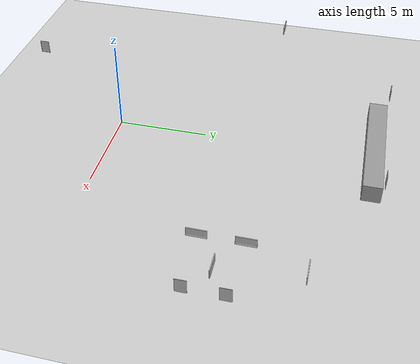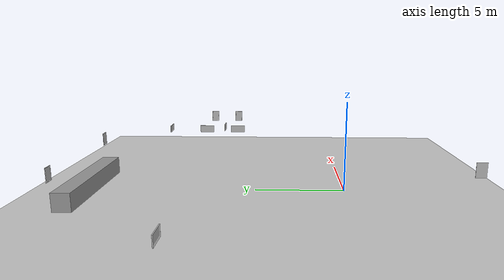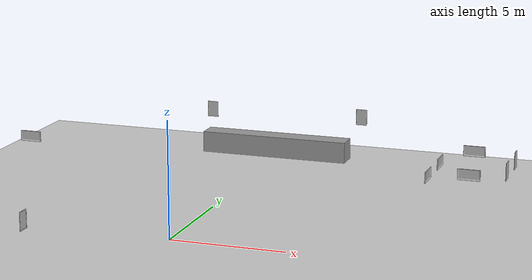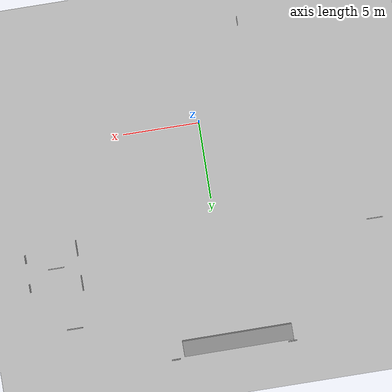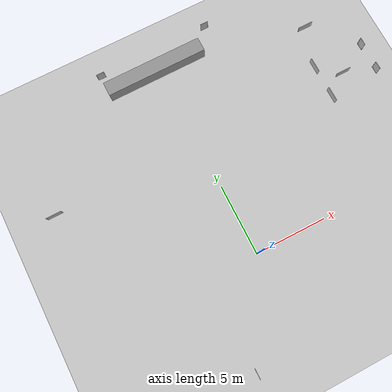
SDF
<sdf version="1.7">
 <world name="world">
  <model name="ground_plane">
   <static>1</static>
   <link name="link">
    <collision name="collision">
     <geometry><plane><normal>0 0 1</normal><size>100 100</size></plane></geometry>
     <surface>
      <contact><collide_bitmask>65535</collide_bitmask></contact>
      <friction><ode><mu>100</mu><mu2>50</mu2></ode></friction>
     </surface>
    </collision>
    <visual name="visual">
     <cast_shadows>0</cast_shadows>
     <geometry><plane><normal>0 0 1</normal><size>100 100</size></plane></geometry>
     <material>
      <script><uri>file://media/materials/scripts/gazebo.material</uri><name>Gazebo/Grey</name></script>
     </material>
    </visual>
   </link>
   <pose>0 0 -0.1 0 -0 0</pose>
  </model>
  <model name="aws_robomaker_residential_PortraitD_01_6">
   <frame name="aws_robomaker_residential_PortraitD_01::__model__" attached_to="aws_robomaker_residential_PortraitD_01::link">
    <pose relative_to="__model__">-10.2134 7.89752 1.40573 0 -0 0</pose>
   </frame>
   <link name="aws_robomaker_residential_PortraitD_01::link">
    <inertial><mass>1.5</mass></inertial>
    <collision name="collision">
     <geometry>
      <mesh>
       <uri>model://aws_robomaker_residential_PortraitD_01/meshes/aws_PortraitD_01_collision.DAE</uri>
       <scale>1 1 1</scale>
      </mesh>
     </geometry>
    </collision>
    <visual name="visual">
     <geometry>
      <mesh><uri>model://aws_robomaker_residential_PortraitD_01/meshes/aws_PortraitD_01_visual.DAE</uri></mesh>
     </geometry>
     <meta><layer>2</layer></meta>
    </visual>
    <pose relative_to="aws_robomaker_residential_PortraitD_01::__model__">0 0 0 0 -0 0</pose>
   </link>
   <static>1</static>
  </model>
  <model name="CGMClassic_7"/>
  <model name="CGMClassic_8"/>
  <model name="MetalCabinet_3"/>
  <model name="MetalCabinet_4"/>
  <model name="aws_robomaker_residential_PortraitD_02_10">
   <frame name="aws_robomaker_residential_PortraitD_02::__model__" attached_to="aws_robomaker_residential_PortraitD_02::link">
    <pose relative_to="__model__">9.06517 6.78742 1.54508 0 -0 1.57083</pose>
   </frame>
   <link name="aws_robomaker_residential_PortraitD_02::link">
    <inertial><mass>1.5</mass></inertial>
    <collision name="collision">
     <geometry>
      <mesh>
       <uri>model://aws_robomaker_residential_PortraitD_02/meshes/aws_PortraitD_01_collision.DAE</uri>
       <scale>1 1 1</scale>
      </mesh>
     </geometry>
    </collision>
    <visual name="visual">
     <geometry>
      <mesh><uri>model://aws_robomaker_residential_PortraitD_02/meshes/aws_PortraitD_01_visual.DAE</uri></mesh>
     </geometry>
     <meta><layer>2</layer></meta>
    </visual>
    <pose relative_to="aws_robomaker_residential_PortraitD_02::__model__">0 0 0 0 -0 0</pose>
   </link>
   <static>1</static>
  </model>
  <model name="aws_robomaker_residential_PortraitD_02_11">
   <frame name="aws_robomaker_residential_PortraitD_02::__model__" attached_to="aws_robomaker_residential_PortraitD_02::link">
    <pose relative_to="__model__">9.06517 9.05858 1.54508 0 -0 1.57083</pose>
   </frame>
   <link name="aws_robomaker_residential_PortraitD_02::link">
    <inertial><mass>1.5</mass></inertial>
    <collision name="collision">
     <geometry>
      <mesh>
       <uri>model://aws_robomaker_residential_PortraitD_02/meshes/aws_PortraitD_01_collision.DAE</uri>
       <scale>1 1 1</scale>
      </mesh>
     </geometry>
    </collision>
    <visual name="visual">
     <geometry>
      <mesh><uri>model://aws_robomaker_residential_PortraitD_02/meshes/aws_PortraitD_01_visual.DAE</uri></mesh>
     </geometry>
     <meta><layer>2</layer></meta>
    </visual>
    <pose relative_to="aws_robomaker_residential_PortraitD_02::__model__">0 0 0 0 -0 0</pose>
   </link>
   <static>1</static>
  </model>
  <model name="aws_robomaker_residential_PortraitE_02_3">
   <frame name="aws_robomaker_residential_PortraitE_02::__model__" attached_to="aws_robomaker_residential_PortraitE_02::link">
    <pose relative_to="__model__">12.3972 6.98849 1.84129 0 0 -1.5625</pose>
   </frame>
   <link name="aws_robomaker_residential_PortraitE_02::link">
    <inertial><mass>1</mass></inertial>
    <collision name="collision">
     <geometry>
      <mesh>
       <uri>model://aws_robomaker_residential_PortraitE_02/meshes/aws_PortraitE_01_collision.DAE</uri>
       <scale>1 1 1</scale>
      </mesh>
     </geometry>
    </collision>
    <visual name="visual">
     <geometry>
      <mesh><uri>model://aws_robomaker_residential_PortraitE_02/meshes/aws_PortraitE_01_visual.DAE</uri></mesh>
     </geometry>
     <meta><layer>2</layer></meta>
    </visual>
    <pose relative_to="aws_robomaker_residential_PortraitE_02::__model__">0 0 0 0 -0 0</pose>
   </link>
   <static>1</static>
  </model>
  <model name="aws_robomaker_residential_PortraitE_02_4">
   <frame name="aws_robomaker_residential_PortraitE_02::__model__" attached_to="aws_robomaker_residential_PortraitE_02::link">
    <pose relative_to="__model__">12.3972 8.87466 1.84129 0 0 -1.5625</pose>
   </frame>
   <link name="aws_robomaker_residential_PortraitE_02::link">
    <inertial><mass>1</mass></inertial>
    <collision name="collision">
     <geometry>
      <mesh>
       <uri>model://aws_robomaker_residential_PortraitE_02/meshes/aws_PortraitE_01_collision.DAE</uri>
       <scale>1 1 1</scale>
      </mesh>
     </geometry>
    </collision>
    <visual name="visual">
     <geometry>
      <mesh><uri>model://aws_robomaker_residential_PortraitE_02/meshes/aws_PortraitE_01_visual.DAE</uri></mesh>
     </geometry>
     <meta><layer>2</layer></meta>
    </visual>
    <pose relative_to="aws_robomaker_residential_PortraitE_02::__model__">0 0 0 0 -0 0</pose>
   </link>
   <static>1</static>
  </model>
  <model name="aws_robomaker_residential_PortraitE_02_5">
   <frame name="aws_robomaker_residential_PortraitE_02::__model__" attached_to="aws_robomaker_residential_PortraitE_02::link">
    <pose relative_to="__model__">-3.4385 -6.00525 1.84129 0 -0 1.56777</pose>
   </frame>
   <link name="aws_robomaker_residential_PortraitE_02::link">
    <inertial><mass>1</mass></inertial>
    <collision name="collision">
     <geometry>
      <mesh>
       <uri>model://aws_robomaker_residential_PortraitE_02/meshes/aws_PortraitE_01_collision.DAE</uri>
       <scale>1 1 1</scale>
      </mesh>
     </geometry>
    </collision>
    <visual name="visual">
     <geometry>
      <mesh><uri>model://aws_robomaker_residential_PortraitE_02/meshes/aws_PortraitE_01_visual.DAE</uri></mesh>
     </geometry>
     <meta><layer>2</layer></meta>
    </visual>
    <pose relative_to="aws_robomaker_residential_PortraitE_02::__model__">0 0 0 0 -0 0</pose>
   </link>
   <static>1</static>
  </model>
  <model name="aws_robomaker_residential_PortraitD_01_7">
   <frame name="aws_robomaker_residential_PortraitD_01::__model__" attached_to="aws_robomaker_residential_PortraitD_01::link">
    <pose relative_to="__model__">10.596 7.88308 1.40573 0 -0 0</pose>
   </frame>
   <link name="aws_robomaker_residential_PortraitD_01::link">
    <inertial><mass>1.5</mass></inertial>
    <collision name="collision">
     <geometry>
      <mesh>
       <uri>model://aws_robomaker_residential_PortraitD_01/meshes/aws_PortraitD_01_collision.DAE</uri>
       <scale>1 1 1</scale>
      </mesh>
     </geometry>
    </collision>
    <visual name="visual">
     <geometry>
      <mesh><uri>model://aws_robomaker_residential_PortraitD_01/meshes/aws_PortraitD_01_visual.DAE</uri></mesh>
     </geometry>
     <meta><layer>2</layer></meta>
    </visual>
    <pose relative_to="aws_robomaker_residential_PortraitD_01::__model__">0 0 0 0 -0 0</pose>
   </link>
   <static>1</static>
  </model>
  <model name="aws_robomaker_residential_PortraitD_01_8">
   <frame name="aws_robomaker_residential_PortraitD_01::__model__" attached_to="aws_robomaker_residential_PortraitD_01::link">
    <pose relative_to="__model__">9.98896 11.914 1.40573 0 -0 0</pose>
   </frame>
   <link name="aws_robomaker_residential_PortraitD_01::link">
    <inertial><mass>1.5</mass></inertial>
    <collision name="collision">
     <geometry>
      <mesh>
       <uri>model://aws_robomaker_residential_PortraitD_01/meshes/aws_PortraitD_01_collision.DAE</uri>
       <scale>1 1 1</scale>
      </mesh>
     </geometry>
    </collision>
    <visual name="visual">
     <geometry>
      <mesh><uri>model://aws_robomaker_residential_PortraitD_01/meshes/aws_PortraitD_01_visual.DAE</uri></mesh>
     </geometry>
     <meta><layer>2</layer></meta>
    </visual>
    <pose relative_to="aws_robomaker_residential_PortraitD_01::__model__">0 0 0 0 -0 0</pose>
   </link>
   <static>1</static>
  </model>
  <model name="ParkingTrolleyMin_1"/>
  <model name="PatientFSit_1"/>
  <model name="MaleVisitorOnPhone_1"/>
  <model name="FemaleVisitor_1"/>
  <model name="MaleVisitorSit_2"/>
  <model name="Scrubs_6"/>
  <model name="MalePatientBed_1"/>
  <model name="CGMClassic_9"/>
  <model name="StorageRackCoverOpen_1"/>
  <model name="StorageRack_3"/>
  <model name="StorageRack_4"/>
  <model name="StorageRackCovered_2"/>
  <model name="FemaleVisitorSit_2"/>
  <model name="InstrumentCart1_3"/>
  <model name="ParkingTrolleyMax_1"/>
  <model name="ElderMalePatient_2"/>
  <model name="aws_robomaker_residential_PortraitE_02_6">
   <frame name="aws_robomaker_residential_PortraitE_02::__model__" attached_to="aws_robomaker_residential_PortraitE_02::link">
    <pose relative_to="__model__">-3.74211 14.8725 1.54379 0 -0 0</pose>
   </frame>
   <link name="aws_robomaker_residential_PortraitE_02::link">
    <inertial><mass>1</mass></inertial>
    <collision name="collision">
     <geometry>
      <mesh>
       <uri>model://aws_robomaker_residential_PortraitE_02/meshes/aws_PortraitE_01_collision.DAE</uri>
       <scale>1 1 1</scale>
      </mesh>
     </geometry>
    </collision>
    <visual name="visual">
     <geometry>
      <mesh><uri>model://aws_robomaker_residential_PortraitE_02/meshes/aws_PortraitE_01_visual.DAE</uri></mesh>
     </geometry>
     <meta><layer>2</layer></meta>
    </visual>
    <pose relative_to="aws_robomaker_residential_PortraitE_02::__model__">0 0 0 0 -0 0</pose>
   </link>
   <static>1</static>
  </model>
  <model name="aws_robomaker_residential_PortraitE_01_3">
   <frame name="aws_robomaker_residential_PortraitE_01::__model__" attached_to="aws_robomaker_residential_PortraitE_01::link">
    <pose relative_to="__model__">3.85701 14.8779 1.69742 0 -0 0</pose>
   </frame>
   <link name="aws_robomaker_residential_PortraitE_01::link">
    <inertial><mass>1</mass></inertial>
    <collision name="collision">
     <geometry>
      <mesh>
       <uri>model://aws_robomaker_residential_PortraitE_01/meshes/aws_PortraitE_01_collision.DAE</uri>
       <scale>1 1 1</scale>
      </mesh>
     </geometry>
    </collision>
    <visual name="visual">
     <geometry>
      <mesh><uri>model://aws_robomaker_residential_PortraitE_01/meshes/aws_PortraitE_01_visual.DAE</uri></mesh>
     </geometry>
     <meta><layer>2</layer></meta>
    </visual>
    <pose relative_to="aws_robomaker_residential_PortraitE_01::__model__">0 0 0 0 -0 0</pose>
   </link>
   <static>1</static>
  </model>
  <model name="Chair_3"/>
  <model name="XRayMachine_1"/>
  <model name="IVStand_1"/>
  <model name="BloodPressureMonitor_1"/>
  <model name="IVStand_2"/>
  <model name="BMWCart_1"/>
  <model name="Scrubs_7"/>
  <model name="BPCart_1"/>
  <model name="BPCart_2"/>
  <model name="BPCart_3"/>
  <model name="BPCart_4"/>
  <model name="VendingMachine_1"/>
  <model name="VendingMachine_2"/>
  <model name="Chair_4"/>
  <model name="unit_box">
   <pose>-0.272259 14.3625 0.5 -2e-06 0 0.003523</pose>
   <link name="link">
    <inertial>
     <mass>1</mass>
     <inertia>
      <ixx>0.166667</ixx>
      <ixy>0</ixy>
      <ixz>0</ixz>
      <iyy>0.166667</iyy>
      <iyz>0</iyz>
      <izz>0.166667</izz>
     </inertia>
    </inertial>
    <collision name="collision"><geometry><box><size>7.17799 1 1</size></box></geometry></collision>
    <visual name="visual">
     <geometry><box><size>7.17799 1 1</size></box></geometry>
     <material>
      <script><name>Gazebo/Grey</name><uri>file://media/materials/scripts/gazebo.material</uri></script>
     </material>
    </visual>
   </link>
  </model>
 </world>
</sdf>
